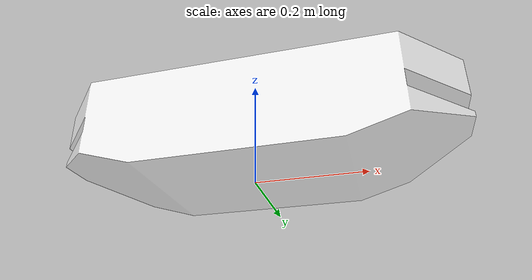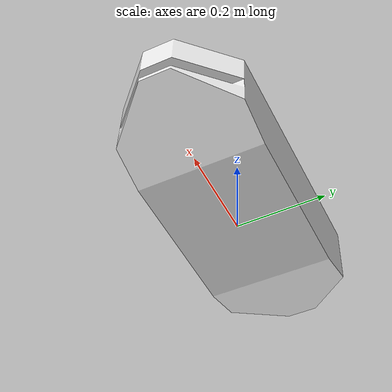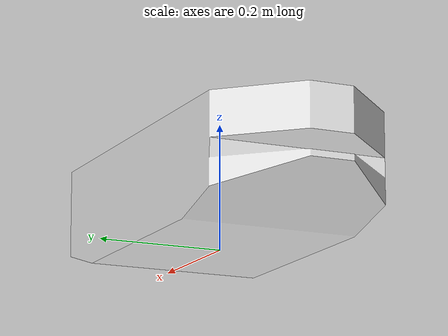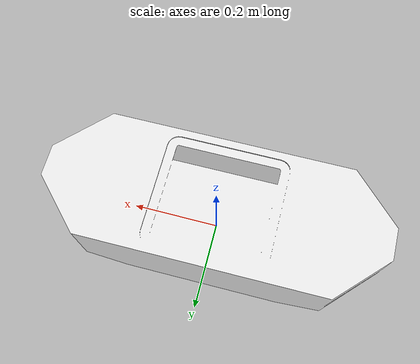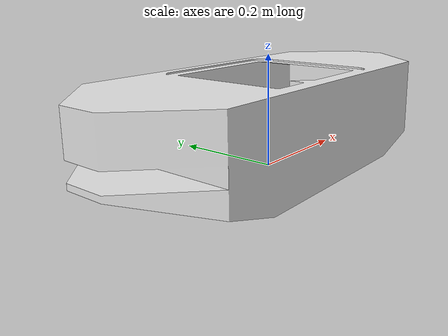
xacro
<?xml version="1.0"?>
<robot xmlns:xacro="http://www.ros.org/wiki/xacro" >

    <!--BASE LINK-->
    <link name="base_link">
    </link>

    <!--CHASSIS LINK-->
    <joint name="chassis_joint" type="fixed">
        <parent link = "base_link"/>
        <child link = "chassis"/>
        <origin xyz ="0 0 0"/>
    </joint>

    <link name = "chassis">
        <visual>
            <origin xyz= "0 0 0.085"/>
            <geometry>
                <mesh filename= "package://description2/meshes/Chassis.stl" scale="0.001 0.001 0.001"/>
            </geometry>
            <material name ="white"/>
        </visual>
        <collision>
            <origin xyz= "0 0 0.085"/>
            <geometry>
                <box size = "0.69804 0.325 0.17 "/>

            </geometry>
            <material name ="white"/>
        </collision>
        <inertial>
            <mass value="19.928" />
            <origin xyz="0 0 0" />
                    <inertia ixx="0.286" ixy="0.0" ixz="0.0"
                iyy="1.109" iyz="0.0"
                izz="1.227" />
        </inertial>
    </link>

    <gazebo reference = "chassis">
        <material>
            Gazebo/White
        </material>
    </gazebo>

</robot>
